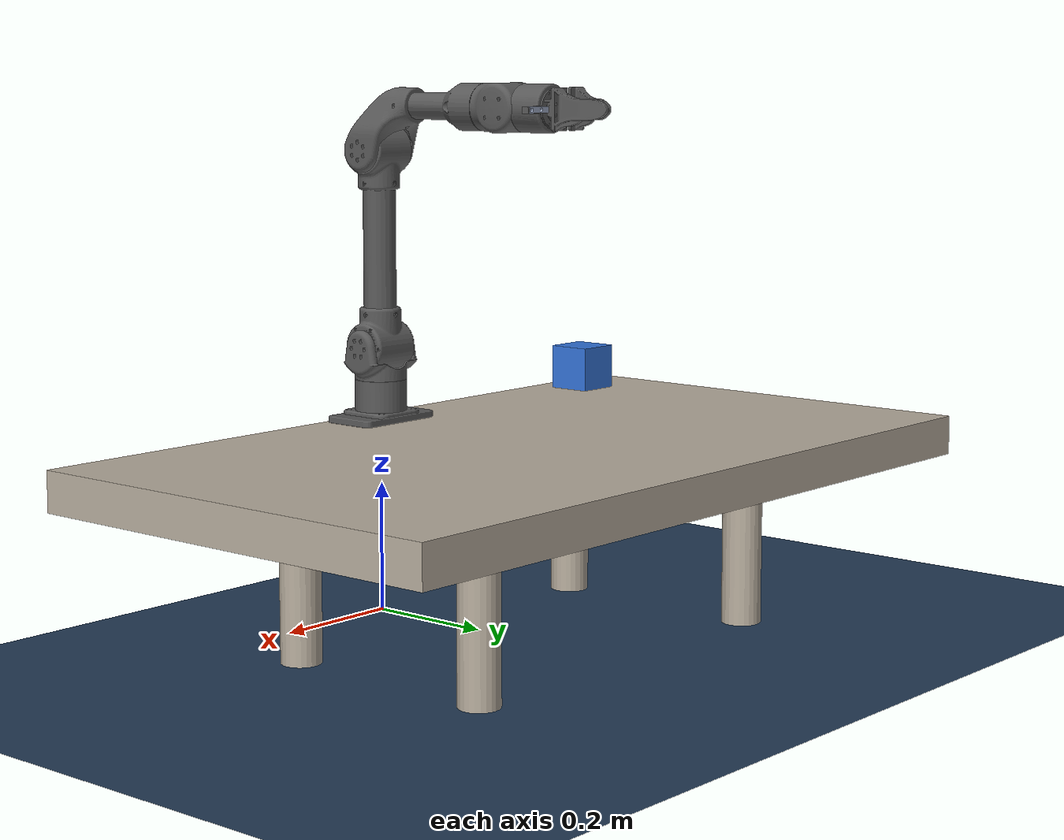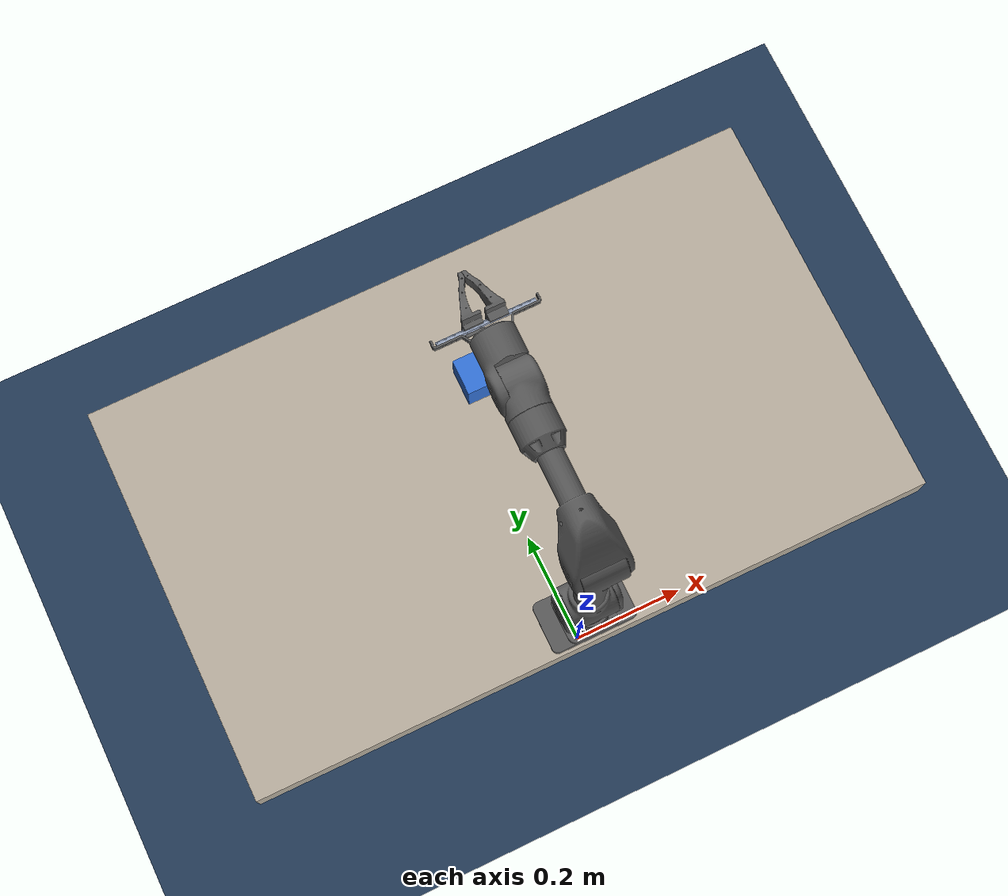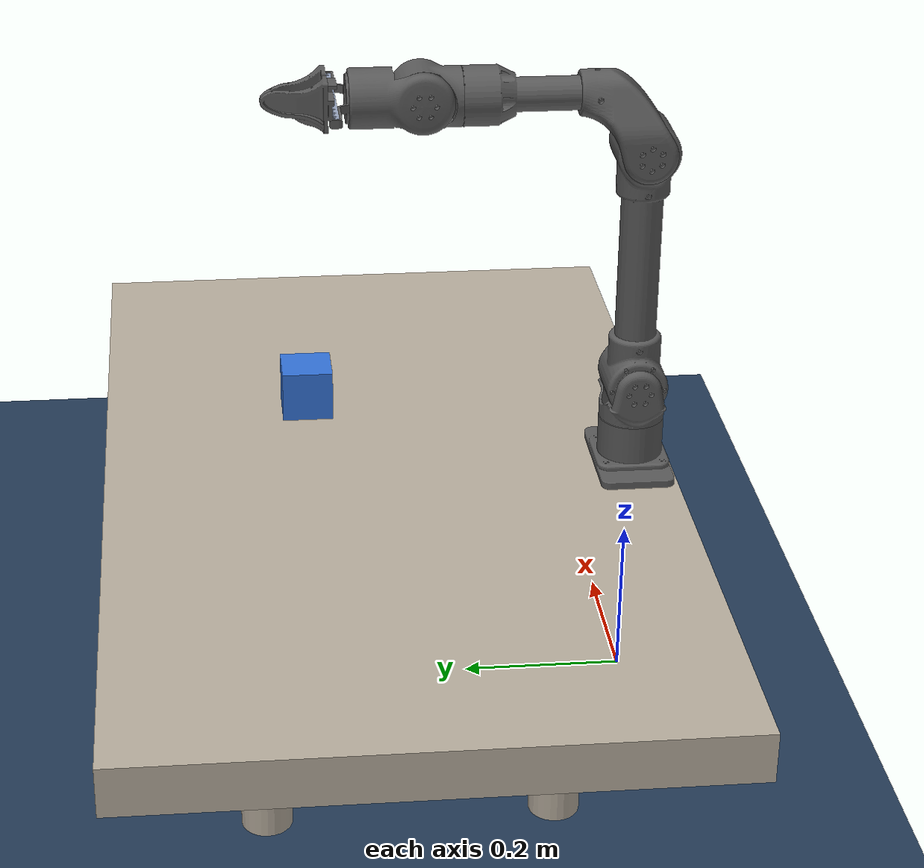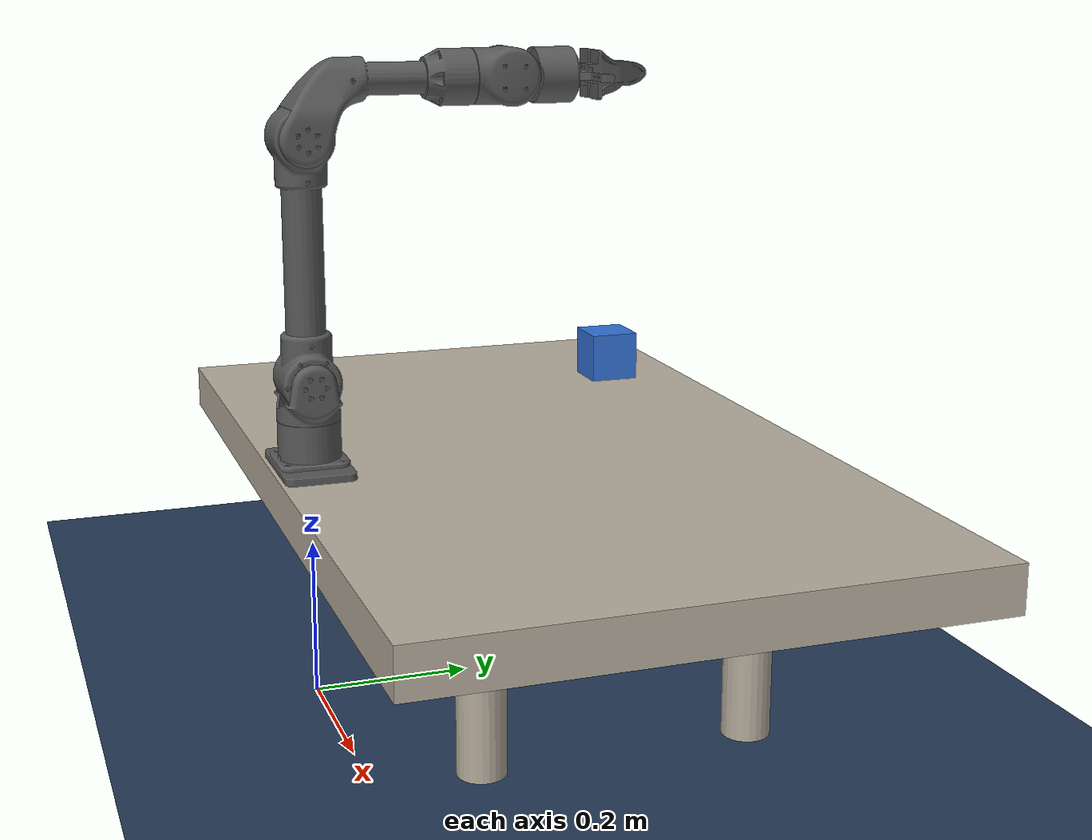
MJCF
<mujoco model="dm_arm_scene">
  <include file="dm_arm.xml"/>

  <statistic center="0.15 0.25 0.35" extent="1.2"/>

  <visual>
    <headlight diffuse="0.6 0.6 0.6" ambient="0.3 0.3 0.3" specular="0 0 0"/>
    <rgba haze="0.12 0.18 0.25 1"/>
    <global azimuth="120" elevation="-20"/>
  </visual>

  <asset>
    <texture type="skybox" builtin="gradient"
             rgb1="0.28 0.45 0.65" rgb2="0.02 0.02 0.03"
             width="512" height="3072"/>

    <texture type="2d" name="groundplane" builtin="checker" mark="edge"
             rgb1="0.18 0.28 0.40" rgb2="0.10 0.18 0.28"
             markrgb="0.8 0.8 0.8" width="300" height="300"/>
    <material name="groundplane" texture="groundplane"
              texuniform="true" texrepeat="6 6" reflectance="0.15"/>

    <material name="mat_table" rgba="0.72 0.68 0.62 1" shininess="0.10" reflectance="0.05"/>
    <material name="mat_obj"   rgba="0.20 0.45 0.85 1" shininess="0.25" reflectance="0.10"/>
  </asset>

  <default>
    <geom contype="1" conaffinity="1"
          friction="1 0.01 0.001"
          solref="0.002 1"
          solimp="0.90 0.95 0.001"/>
  </default>

  <worldbody>
    <light name="key"  pos="0.2 -0.2 1.6" dir="-0.1 0.2 -1" directional="true" diffuse="1 1 1"/>
    <light name="fill" pos="1.2  1.2 1.2" dir="-1 -1 -1"     directional="true" diffuse="0.4 0.4 0.4"/>
    <light name="rim"  pos="-1.2 0.8 1.2" dir="1 -0.6 -1"    directional="true" diffuse="0.25 0.25 0.25"/>

    <!-- 网格地面（唯一地面） -->
    <geom name="floor" type="plane" material="groundplane" size="0 0 0.05"
          contype="1" conaffinity="1"/>

    <!-- 桌面 -->
    <body name="table" pos="0.00 0.30 0.27">
      <geom name="table_top" type="box" size="0.60 0.35 0.03"
            material="mat_table"/>

      <!-- 桌腿（四个柱体） -->
      <body name="table_leg1" pos="-0.30 0.17 -0.135">
        <geom type="cylinder" size="0.03 0.135" material="mat_table"/>
      </body>
      <body name="table_leg2" pos="0.30 0.17 -0.135">
        <geom type="cylinder" size="0.03 0.135" material="mat_table"/>
      </body>
      <body name="table_leg3" pos="-0.30 -0.17 -0.135">
        <geom type="cylinder" size="0.03 0.135" material="mat_table"/>
      </body>
      <body name="table_leg4" pos="0.30 -0.17 -0.135">
        <geom type="cylinder" size="0.03 0.135" material="mat_table"/>
      </body>
    </body>

    <!-- 可抓取物体 -->
    <body name="box_object" pos="0.00 0.40 0.42">
      <freejoint/>
      <geom name="box_geom" type="box" size="0.03 0.03 0.03"
            material="mat_obj"
            density="600"/>
    </body>

    <!-- 相机 -->
    <camera name="main_cam"
            pos="1.25 -1.05 0.95"
            quat="0.9239 0 0 0.3827"
            fovy="45"/>
    <camera name="top_cam"
            pos="0.20 0.35 1.60"
            quat="0.7071 0.7071 0 0"
            fovy="50"/>
  </worldbody>
</mujoco>

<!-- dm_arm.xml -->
<mujoco model="dm_arm">
  <compiler angle="radian" meshdir="../meshes" autolimits="true"/>

  <!-- Simulation settings -->
  <option gravity="0 0 -9.81" timestep="0.001" integrator="RK4"/>

  <!-- Common defaults to reduce repetition -->
  <default>
    <!-- Visual-only mesh: does not participate in collision -->
    <default class="visual_mesh">
      <geom type="mesh" contype="0" conaffinity="0" mass="0" density="0"/>
    </default>

    <!-- Collision mesh: participates in collision, kept transparent -->
    <default class="collision_mesh">
      <geom type="mesh" rgba="0 0 0 0" contype="1" conaffinity="1" mass="0" density="0"/>
    </default>

    <!-- Common hinge joint damping/armature baseline; override per joint as needed -->
    <default class="arm_hinge">
      <joint type="hinge" limited="true" range="-3.14 3.14"/>
    </default>
  </default>

  <asset>
    <!-- Robot meshes (STL). Keep names stable for geom references. -->
    <mesh name="base_link"     file="base_link.STL"/>
    <mesh name="link1"         file="link1.STL"/>
    <mesh name="link2"         file="link2.STL"/>
    <mesh name="link3"         file="link3.STL"/>
    <mesh name="link4"         file="link4.STL"/>
    <mesh name="link5"         file="link5.STL"/>
    <mesh name="link6"         file="link6.STL"/>
    <mesh name="dm_hand"       file="dm_hand.STL"/>
    <mesh name="dm_left_hand"  file="dm_left_hand.STL"/>
    <mesh name="dm_right_hand" file="dm_right_hand.STL"/>
  </asset>

  <worldbody>

    <!-- Base -->
    <body name="base_link" pos="0.0 0 0.3" quat="0 0 0 -1" >
      <inertial pos="0 0 0" mass="2.5" diaginertia="0.020 0.020 0.020"/>

      <geom class="visual_mesh"   mesh="base_link" rgba="0.35 0.35 0.35 1"/>
      <geom class="collision_mesh" name="col_base_link" mesh="base_link"/>

      <!-- Link1 -->
      <body name="link1" pos="0 0 0.065" quat="0.5 0.5 -0.5 -0.5">
        <inertial pos="0 0 0" mass="1.2" diaginertia="0.010 0.010 0.010"/>

        <joint class="arm_hinge" name="joint1" axis="0 1 0"
               damping="2" armature="0.01"/>

        <geom class="visual_mesh"    mesh="link1" rgba="0.35 0.35 0.35 1"/>

        <!-- Link2 -->
        <body name="link2" pos="0 0.05 0" quat="0.7071067811865462 0 0.7071067811865488 0">
          <inertial pos="0 0 0" mass="1.0" diaginertia="0.008 0.008 0.008"/>

          <joint class="arm_hinge" name="joint2" axis="1 0 0"
                 damping="2" armature="0.01"/>

          <geom class="visual_mesh"    mesh="link2" rgba="0.35 0.35 0.35 1"/>
          <geom class="collision_mesh" name="col_link2" mesh="link2"/>

          <!-- Link3 -->
          <body name="link3" pos="0 0.3 0"
                quat="5.26835673519653e-09 0.7071067811865462 5.268356735196549e-09 -0.7071067811865488">
            <inertial pos="0 0 0" mass="0.8" diaginertia="0.006 0.006 0.006"/>

            <joint class="arm_hinge" name="joint3" axis="0 0 -1"
                   damping="1.5" armature="0.008"/>

            <geom class="visual_mesh"    mesh="link3" rgba="0.35 0.35 0.35 1"/>
            <geom class="collision_mesh" name="col_link3" mesh="link3"/>

            <!-- Link4 -->
            <body name="link4" pos="-0.262 -0.068 0" quat="-3.673205103346574e-06 -0.9999999999932537 0 0">
              <inertial pos="0 0 0" mass="0.6" diaginertia="0.004 0.004 0.004"/>

              <joint class="arm_hinge" name="joint4" axis="-1 0 0"
                     damping="1.0" armature="0.006"/>

              <geom class="visual_mesh"    mesh="link4" rgba="0.35 0.35 0.35 1"/>
              <geom class="collision_mesh" name="col_link4" mesh="link4"/>

              <!-- Link5 -->
              <body name="link5" pos="0 0 0" quat="-3.673205103346574e-06 0 0 0.9999999999932537">
                <inertial pos="0 0 0" mass="0.5" diaginertia="0.003 0.003 0.003"/>

                <joint class="arm_hinge" name="joint5" axis="0 0 1"
                       damping="0.8" armature="0.005"/>

                <geom class="visual_mesh"    mesh="link5" rgba="0.35 0.35 0.35 1"/>
                <geom class="collision_mesh" name="col_link5" mesh="link5"/>

                <!-- Link6 -->
                <body name="link6" pos="0.085 0 -0.002"
                      quat="0.7071067811901252 -1.2986741185772033e-06 0.7071067811805847 -1.2986741186327144e-06">
                  <inertial pos="0 0 0" mass="0.4" diaginertia="0.002 0.002 0.002"/>

                  <joint class="arm_hinge" name="joint6" axis="0 0 1"
                         damping="0.5" armature="0.004"/>

                  <geom class="visual_mesh"    mesh="link6" rgba="0.35 0.35 0.35 1"/>
                  <geom class="collision_mesh" name="col_link6" mesh="link6"/>

                  <!-- Hand base (mount) -->
                  <body name="dm_hand" pos="-0.0775 -0.0045 0.02"
                        quat="0.4999981633974483 0.49999999999662686 0.5000018366025516 0.49999999999662686">
                    <inertial pos="0 0 0" mass="0.3" diaginertia="0.0015 0.0015 0.0015"/>

                    <geom class="visual_mesh"    mesh="dm_hand" rgba="0.6 0.65 0.75 1"/>
                    <geom class="collision_mesh" name="col_dm_hand" mesh="dm_hand"/>

                    <!-- Right jaw -->
                    <body name="dm_right_hand" pos="0.0044 -0.0083 0.059139"
                          quat="1.3492435731251315e-11 3.6732051033217936e-06 -0.9999999999865075 -3.6732051033217936e-06">
                      <inertial pos="0 0 0" mass="0.15" diaginertia="0.0006 0.0006 0.0006"/>

                      <joint name="dm_right_joint" type="slide" axis="0 0 1"
                             limited="true" range="0 0.045" damping="5"/>

                      <geom class="visual_mesh"    mesh="dm_right_hand" rgba="0.35 0.35 0.35 1"/>
                      <geom class="collision_mesh" name="col_dm_right_hand" mesh="dm_right_hand"/>
                    </body>

                    <!-- Left jaw (moves opposite direction via equality constraint) -->
                    <body name="dm_left_hand" pos="0.0044 -0.0083 0.095861">
                      <inertial pos="0 0 0" mass="0.15" diaginertia="0.0006 0.0006 0.0006"/>

                      <joint name="dm_left_joint" type="slide" axis="0 0 -1"
                             limited="true" range="-0.045 0" damping="5"/>

                      <geom class="visual_mesh"    mesh="dm_left_hand" rgba="0.35 0.35 0.35 1"/>
                      <geom class="collision_mesh" name="col_dm_left_hand" mesh="dm_left_hand"/>
                    </body>

                  </body>
                </body>
              </body>
            </body>
          </body>
        </body>
      </body>
    </body>
  </worldbody>

  <!--
    Gripper coupling:
    dm_left_joint = - dm_right_joint (via polynomial equality)
    This ensures symmetric opening/closing with a single actuator if desired.
  -->
  <equality>
    <joint joint1="dm_left_joint" joint2="dm_right_joint" polycoef="0 -1 0 0 0"/>
  </equality>

  <actuator>
    <!-- Arm joints: position actuators (PD-like) -->
    <position name="j1_pos" joint="joint1" kp="600"  kv="50"/>
    <position name="j2_pos" joint="joint2" kp="60"  kv="10"/>
    <position name="j3_pos" joint="joint3" kp="50"  kv="9"/>
    <position name="j4_pos" joint="joint4" kp="40"  kv="8"/>
    <position name="j5_pos" joint="joint5" kp="30"  kv="6"/>
    <position name="j6_pos" joint="joint6" kp="25"  kv="5"/>

    <!-- Gripper: motor drives dm_right_joint; dm_left_joint follows via equality -->
    <motor name="gripper_motor" joint="dm_right_joint" gear="20"/>
  </actuator>
</mujoco>
